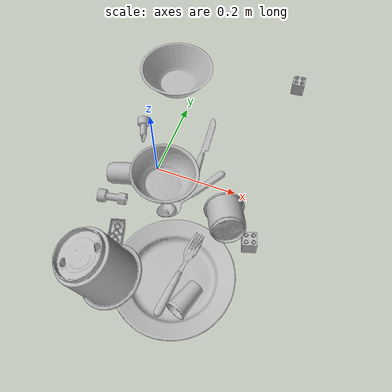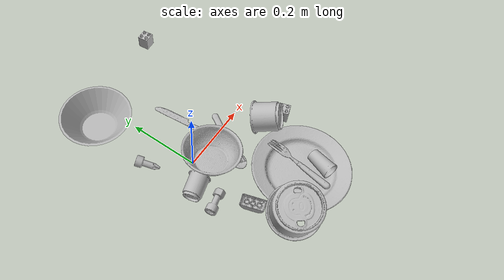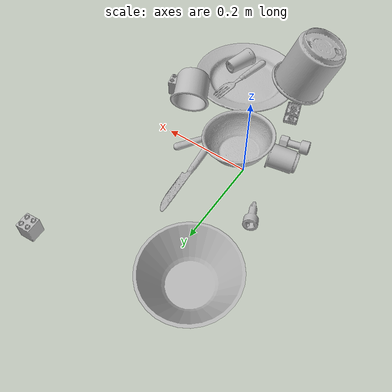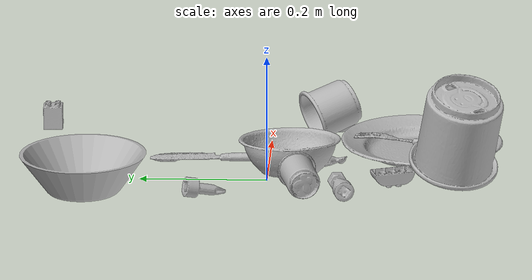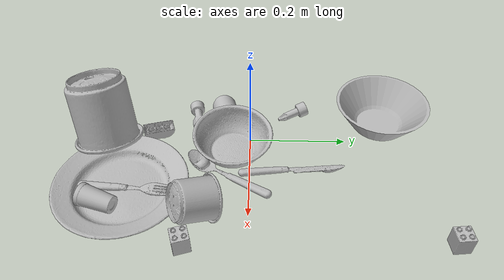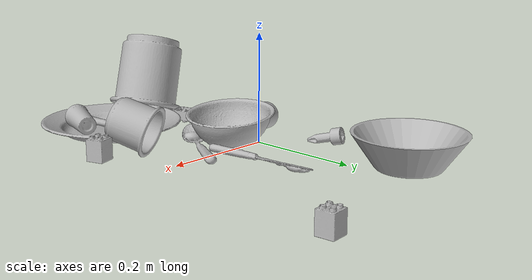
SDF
<sdf version="1.4">
  <world name="default">
    <light name="light1" type="point">
      <pose>0 0 1 0 0 0</pose>
      <diffuse>3 3 3 1</diffuse>
      <specular>3 3 3 1</specular>
    </light>
    <light name="light2" type="point">
      <pose>0 0.5 2 0 0 0</pose>
      <diffuse>1 1 1 1</diffuse>
      <specular>1 1 1 1</specular>
    </light>
    <light name="light3" type="point">
      <pose>0 0.5 2 0 0 0</pose>
      <diffuse>3 3 3 1</diffuse>
      <specular>3 3 3 1</specular>
    </light>
    <scene>
      <ambient>0.7 0.7 0.7</ambient>
    </scene>
    <model name="plate1">
      <link name="link_plate1">
        <collision name="default">
          <geometry>
            <mesh>
              <uri>model://plate/collision_meshes/collision.obj</uri>
              <scale>1.0 1.0 1.0</scale>
            </mesh>
          </geometry>
          <surface>
            <friction>
              <ode>
                <mu>0.5</mu>
                <mu2>0.5</mu2>
              </ode>
            </friction>
          <contact>
        <ode>
            <max_vel>0</max_vel>
            <min_depth>0.0001</min_depth>
            <kp>1e8</kp>
        </ode>
    </contact></surface>
        </collision>
        <visual name="default">
          <geometry>
            <mesh>
              <uri>model://plate/visual_meshes/visual.dae</uri>
              <scale>1.0 1.0 1.0</scale>
            </mesh>
          </geometry>
        </visual>
        <inertial>
          <mass>0.188415065407753</mass>
          <pose>-0.0006044681649655104 0.0002782578521873802 -0.0010561991948634386 0.0022187970116661695 -0.0032254679619122127 0.4526056514331616</pose>
          <inertia>
            <ixx>0.00088140933</ixx>
            <iyy>0.000872979</iyy>
            <izz>0.0017239053</izz>
            <ixy>0</ixy>
            <ixz>0</ixz>
            <iyz>0</iyz>
          </inertia>
        </inertial>
      </link>
      <pose>0.14409853518009186 -0.24567461013793945 0.013745182193815708 -4.200779445869846e-05 -0.00015889276752722474 0.6539694024912588</pose>
    </model>
    <model name="cup1">
      <link name="link_cup1">
        <collision name="default">
          <geometry>
            <mesh>
              <uri>model://d_cups/collision_meshes/collision.obj</uri>
              <scale>2.0 2.0 2.0</scale>
            </mesh>
          </geometry>
          <surface>
            <friction>
              <ode>
                <mu>0.5</mu>
                <mu2>0.5</mu2>
              </ode>
            </friction>
          <contact>
        <ode>
            <max_vel>0</max_vel>
            <min_depth>0.0001</min_depth>
            <kp>1e8</kp>
        </ode>
    </contact></surface>
        </collision>
        <visual name="default">
          <geometry>
            <mesh>
              <uri>model://d_cups/visual_meshes/visual.dae</uri>
              <scale>2.0 2.0 2.0</scale>
            </mesh>
          </geometry>
        </visual>
        <inertial>
          <mass>0.39843064546585083</mass>
          <pose>0.0016136104241013527 0.0038234808016568422 -0.004533304367214441 0.24012134810188138 -0.24709791903716813 0.5942561701250738</pose>
          <inertia>
            <ixx>0.0013343208</ixx>
            <iyy>0.001330459</iyy>
            <izz>0.001207787</izz>
            <ixy>0</ixy>
            <ixz>0</ixz>
            <iyz>0</iyz>
          </inertia>
        </inertial>
      </link>
      <pose>0.004272368736565113 -0.300254762172699 0.08731132745742798 2.88679018996742 -0.2165107816867638 1.2676257205311232</pose>
    </model>
    <model name="silverware1">
      <link name="link_silverware1">
        <collision name="default">
          <geometry>
            <mesh>
              <uri>model://knife/collision_meshes/collision.obj</uri>
              <scale>1.0 1.0 1.0</scale>
            </mesh>
          </geometry>
          <surface>
            <friction>
              <ode>
                <mu>0.5</mu>
                <mu2>0.5</mu2>
              </ode>
            </friction>
          <contact>
        <ode>
            <max_vel>0</max_vel>
            <min_depth>0.0001</min_depth>
            <kp>1e8</kp>
        </ode>
    </contact></surface>
        </collision>
        <visual name="default">
          <geometry>
            <mesh>
              <uri>model://knife/visual_meshes/visual.dae</uri>
              <scale>1.0 1.0 1.0</scale>
            </mesh>
          </geometry>
        </visual>
        <inertial>
          <mass>0.027211036533117294</mass>
          <pose>-0.02378525771200657 0.0015275125624611974 5.062023410573602e-05 0.0730549860308878 0.01724841828598218 -0.007409817457274567</pose>
          <inertia>
            <ixx>7.723595e-07</ixx>
            <iyy>0.000104540384</iyy>
            <izz>0.00010478913</izz>
            <ixy>0</ixy>
            <ixz>0</ixz>
            <iyz>0</iyz>
          </inertia>
        </inertial>
      </link>
      <pose>0.09163136780261993 0.0847378671169281 0.008136847987771034 -0.28174404357035215 -0.008871587436261449 1.6642094696290861</pose>
    </model>
    <model name="silverware2">
      <link name="link_silverware2">
        <collision name="default">
          <geometry>
            <mesh>
              <uri>model://fork/collision_meshes/collision.obj</uri>
              <scale>1.0 1.0 1.0</scale>
            </mesh>
          </geometry>
          <surface>
            <friction>
              <ode>
                <mu>0.5</mu>
                <mu2>0.5</mu2>
              </ode>
            </friction>
          <contact>
        <ode>
            <max_vel>0</max_vel>
            <min_depth>0.0001</min_depth>
            <kp>1e8</kp>
        </ode>
    </contact></surface>
        </collision>
        <visual name="default">
          <geometry>
            <mesh>
              <uri>model://fork/visual_meshes/visual.dae</uri>
              <scale>1.0 1.0 1.0</scale>
            </mesh>
          </geometry>
        </visual>
        <inertial>
          <mass>0.01567319966852665</mass>
          <pose>-0.029570044949650764 0.00046588233090005815 0.0003218860656488687 -0.013551693849150472 -0.010977837004960822 0.014453899894816049</pose>
          <inertia>
            <ixx>5.494343e-07</ixx>
            <iyy>4.0918225e-05</iyy>
            <izz>4.1163967e-05</izz>
            <ixy>0</ixy>
            <ixz>0</ixz>
            <iyz>0</iyz>
          </inertia>
        </inertial>
      </link>
      <pose>0.15232540667057037 -0.2339741587638855 0.018977077677845955 -3.069717029930299 -0.10028276246042192 1.4513760591643512</pose>
    </model>
    <model name="silverware3">
      <link name="link_silverware3">
        <collision name="default">
          <geometry>
            <mesh>
              <uri>model://spoon/collision_meshes/collision.obj</uri>
              <scale>1.0 1.0 1.0</scale>
            </mesh>
          </geometry>
          <surface>
            <friction>
              <ode>
                <mu>0.5</mu>
                <mu2>0.5</mu2>
              </ode>
            </friction>
          <contact>
        <ode>
            <max_vel>0</max_vel>
            <min_depth>0.0001</min_depth>
            <kp>1e8</kp>
        </ode>
    </contact></surface>
        </collision>
        <visual name="default">
          <geometry>
            <mesh>
              <uri>model://spoon/visual_meshes/visual.dae</uri>
              <scale>1.0 1.0 1.0</scale>
            </mesh>
          </geometry>
        </visual>
        <inertial>
          <mass>0.020675545558333397</mass>
          <pose>-0.0055263228714466095 -0.001603417913429439 -0.0007271659560501575 0.03521671071703309 -0.03906584129558259 0.006150610048623938</pose>
          <inertia>
            <ixx>1.1500075e-06</ixx>
            <iyy>7.866978e-05</iyy>
            <izz>7.923691e-05</izz>
            <ixy>0</ixy>
            <ixz>0</ixz>
            <iyz>0</iyz>
          </inertia>
        </inertial>
      </link>
      <pose>0.10841955989599228 -0.04236829653382301 0.00838526152074337 0.006729324620432481 0.026892995503497812 -2.1275018597869555</pose>
    </model>
    <model name="cup3">
      <link name="link_cup3">
        <collision name="default">
          <geometry>
            <mesh>
              <uri>model://h_cups/collision_meshes/collision.obj</uri>
              <scale>1.0 1.0 1.0</scale>
            </mesh>
          </geometry>
          <surface>
            <friction>
              <ode>
                <mu>0.5</mu>
                <mu2>0.5</mu2>
              </ode>
            </friction>
          <contact>
        <ode>
            <max_vel>0</max_vel>
            <min_depth>0.0001</min_depth>
            <kp>1e8</kp>
        </ode>
    </contact></surface>
        </collision>
        <visual name="default">
          <geometry>
            <mesh>
              <uri>model://h_cups/visual_meshes/visual.dae</uri>
              <scale>1.0 1.0 1.0</scale>
            </mesh>
          </geometry>
        </visual>
        <inertial>
          <mass>0.08491484075784683</mass>
          <pose>-2.702520214370452e-05 0.00023018663341645151 -0.0018405397422611713 -0.02436220805872295 0.06545280106490914 0.1288526015338695</pose>
          <inertia>
            <ixx>0.000109663546</ixx>
            <iyy>0.00010835491</iyy>
            <izz>0.00011500697</izz>
            <ixy>0</ixy>
            <ixz>0</ixz>
            <iyz>0</iyz>
          </inertia>
        </inertial>
      </link>
      <pose>0.20903190970420837 -0.09724517911672592 0.05456787347793579 -1.9505836386769466 -0.6241232594233629 0.681167390535269</pose>
    </model>
    <model name="cup4">
      <link name="link_cup4">
        <collision name="default">
          <geometry>
            <mesh>
              <uri>model://cup_small/collision_meshes/collision.obj</uri>
              <scale>1.0 1.0 1.0</scale>
            </mesh>
          </geometry>
          <surface>
            <friction>
              <ode>
                <mu>0.5</mu>
                <mu2>0.5</mu2>
              </ode>
            </friction>
          <contact>
        <ode>
            <max_vel>0</max_vel>
            <min_depth>0.0001</min_depth>
            <kp>1e8</kp>
        </ode>
    </contact></surface>
        </collision>
        <visual name="default">
          <geometry>
            <mesh>
              <uri>model://cup_small/visual_meshes/visual.dae</uri>
              <scale>1.0 1.0 1.0</scale>
            </mesh>
          </geometry>
        </visual>
        <inertial>
          <mass>0.024220753461122513</mass>
          <pose>0.00010482438665349036 -0.00033778438228182495 -0.010742821730673313 -0.011493274197159384 -0.01528013747447056 -0.5058088438882253</pose>
          <inertia>
            <ixx>1.4260815e-05</ixx>
            <iyy>1.433438e-05</iyy>
            <izz>6.4388e-06</izz>
            <ixy>0</ixy>
            <ixz>0</ixz>
            <iyz>0</iyz>
          </inertia>
        </inertial>
      </link>
      <pose>0.1862264722585678 -0.28112608194351196 0.023792166262865067 1.4924912373778372 -0.7972331886080549 -0.2719448573858347</pose>
    </model>
    <model name="cup5">
      <link name="link_cup5">
        <collision name="default">
          <geometry>
            <mesh>
              <uri>model://b_cups/collision_meshes/collision.obj</uri>
              <scale>1.0 1.0 1.0</scale>
            </mesh>
          </geometry>
          <surface>
            <friction>
              <ode>
                <mu>0.5</mu>
                <mu2>0.5</mu2>
              </ode>
            </friction>
          <contact>
        <ode>
            <max_vel>0</max_vel>
            <min_depth>0.0001</min_depth>
            <kp>1e8</kp>
        </ode>
    </contact></surface>
        </collision>
        <visual name="default">
          <geometry>
            <mesh>
              <uri>model://b_cups/visual_meshes/visual.dae</uri>
              <scale>1.0 1.0 1.0</scale>
            </mesh>
          </geometry>
        </visual>
        <inertial>
          <mass>0.049698356539011</mass>
          <pose>0.0005182003951631486 0.0018058595014736056 -0.0013381819007918239 0.1135633586286738 0.03872473724046268 -0.3456911343663658</pose>
          <inertia>
            <ixx>3.2531058e-05</ixx>
            <iyy>3.1913434e-05</iyy>
            <izz>2.7374275e-05</izz>
            <ixy>0</ixy>
            <ixz>0</ixz>
            <iyz>0</iyz>
          </inertia>
        </inertial>
      </link>
      <pose>-0.0633213073015213 -0.05522887036204338 0.027486339211463928 -1.250316176653723 1.2775454383592915 -1.011744093916394</pose>
    </model>
    <model name="bowl1">
      <link name="link_bowl1">
        <collision name="default">
          <geometry>
            <mesh>
              <uri>model://bowl/collision_meshes/collision.obj</uri>
              <scale>1.0 1.0 1.0</scale>
            </mesh>
          </geometry>
          <surface>
            <friction>
              <ode>
                <mu>0.5</mu>
                <mu2>0.5</mu2>
              </ode>
            </friction>
          <contact>
        <ode>
            <max_vel>0</max_vel>
            <min_depth>0.0001</min_depth>
            <kp>1e8</kp>
        </ode>
    </contact></surface>
        </collision>
        <visual name="default">
          <geometry>
            <mesh>
              <uri>model://bowl/visual_meshes/visual.dae</uri>
              <scale>1.0 1.0 1.0</scale>
            </mesh>
          </geometry>
        </visual>
        <inertial>
          <mass>0.10713337361812592</mass>
          <pose>0.00020444899564608932 -0.001030207029543817 -0.0008042642148211598 -0.015763984617069283 0.014546905390658569 0.7140476331316008</pose>
          <inertia>
            <ixx>0.0002460938</ixx>
            <iyy>0.00024059511</iyy>
            <izz>0.00041401442</izz>
            <ixy>0</ixy>
            <ixz>0</ixz>
            <iyz>0</iyz>
          </inertia>
        </inertial>
      </link>
      <pose>0.03624645248055458 -0.03520302101969719 0.03135688230395317 -0.004829345208266369 -0.09234747478943084 -2.8200468164165184</pose>
    </model>
    <model name="bowl2">
      <link name="link_bowl2">
        <collision name="default">
          <geometry>
            <mesh>
              <uri>model://bowl_a/collision_meshes/collision.obj</uri>
              <scale>1.0 1.0 1.0</scale>
            </mesh>
          </geometry>
          <surface>
            <friction>
              <ode>
                <mu>0.5</mu>
                <mu2>0.5</mu2>
              </ode>
            </friction>
          <contact>
        <ode>
            <max_vel>0</max_vel>
            <min_depth>0.0001</min_depth>
            <kp>1e8</kp>
        </ode>
    </contact></surface>
        </collision>
        <visual name="default">
          <geometry>
            <mesh>
              <uri>model://bowl_a/visual_meshes/visual.dae</uri>
              <scale>1.0 1.0 1.0</scale>
            </mesh>
          </geometry>
        </visual>
        <inertial>
          <mass>0.5226007103919983</mass>
          <pose>0.00027867400785908103 4.731409717351198e-05 -0.0013765293406322598 -0.0009805372975616423 -0.0010938241101444716 -0.19123543414166835</pose>
          <inertia>
            <ixx>0.0014878683</ixx>
            <iyy>0.0014970028</iyy>
            <izz>0.0026462309</izz>
            <ixy>0</ixy>
            <ixz>0</ixz>
            <iyz>0</iyz>
          </inertia>
        </inertial>
      </link>
      <pose>-0.05941404402256012 0.28134751319885254 0.030382992699742317 -1.957764001915852e-08 1.2211439350596145e-07 3.05905380481972</pose>
    </model>
    <model name="toy1">
      <link name="link_toy1">
        <collision name="default">
          <geometry>
            <mesh>
              <uri>model://f_lego_duplo/collision_meshes/collision.obj</uri>
              <scale>1.0 1.0 1.0</scale>
            </mesh>
          </geometry>
          <surface>
            <friction>
              <ode>
                <mu>0.5</mu>
                <mu2>0.5</mu2>
              </ode>
            </friction>
          <contact>
        <ode>
            <max_vel>0</max_vel>
            <min_depth>0.0001</min_depth>
            <kp>1e8</kp>
        </ode>
    </contact></surface>
        </collision>
        <visual name="default">
          <geometry>
            <mesh>
              <uri>model://f_lego_duplo/visual_meshes/visual.dae</uri>
              <scale>1.0 1.0 1.0</scale>
            </mesh>
          </geometry>
        </visual>
        <inertial>
          <mass>0.04674473777413368</mass>
          <pose>2.3694283299846575e-05 0.00013393160770647228 0.0018837876850739121 0.029838743240884653 -0.014424615896258132 -0.6756775311218791</pose>
          <inertia>
            <ixx>9.877422e-06</ixx>
            <iyy>9.965418e-06</iyy>
            <izz>8.57402e-06</izz>
            <ixy>0</ixy>
            <ixz>0</ixz>
            <iyz>0</iyz>
          </inertia>
        </inertial>
      </link>
      <pose>0.26979607343673706 -0.11616435647010803 0.02187098190188408 3.21513935102881e-05 2.6858092083802158e-05 1.8754532287695589</pose>
    </model>
    <model name="toy2">
      <link name="link_toy2">
        <collision name="default">
          <geometry>
            <mesh>
              <uri>model://b_lego_duplo/collision_meshes/collision.obj</uri>
              <scale>1.0 1.0 1.0</scale>
            </mesh>
          </geometry>
          <surface>
            <friction>
              <ode>
                <mu>0.5</mu>
                <mu2>0.5</mu2>
              </ode>
            </friction>
          <contact>
        <ode>
            <max_vel>0</max_vel>
            <min_depth>0.0001</min_depth>
            <kp>1e8</kp>
        </ode>
    </contact></surface>
        </collision>
        <visual name="default">
          <geometry>
            <mesh>
              <uri>model://b_lego_duplo/visual_meshes/visual.dae</uri>
              <scale>1.0 1.0 1.0</scale>
            </mesh>
          </geometry>
        </visual>
        <inertial>
          <mass>0.046308279037475586</mass>
          <pose>-0.00011053026537410915 -9.152292477665469e-06 0.001929429010488093 -0.03749474318211287 -0.02635425030857695 0.451892682452606</pose>
          <inertia>
            <ixx>9.477338e-06</ixx>
            <iyy>9.541048e-06</iyy>
            <izz>8.443999e-06</izz>
            <ixy>0</ixy>
            <ixz>0</ixz>
            <iyz>0</iyz>
          </inertia>
        </inertial>
      </link>
      <pose>0.2589103579521179 0.37138059735298157 0.02181500941514969 1.943796712489809e-07 5.595043589960609e-07 1.6654867883111337</pose>
    </model>
    <model name="toy3">
      <link name="link_toy3">
        <collision name="default">
          <geometry>
            <mesh>
              <uri>model://c_toy_airplane/collision_meshes/collision.obj</uri>
              <scale>1.0 1.0 1.0</scale>
            </mesh>
          </geometry>
          <surface>
            <friction>
              <ode>
                <mu>0.5</mu>
                <mu2>0.5</mu2>
              </ode>
            </friction>
          <contact>
        <ode>
            <max_vel>0</max_vel>
            <min_depth>0.0001</min_depth>
            <kp>1e8</kp>
        </ode>
    </contact></surface>
        </collision>
        <visual name="default">
          <geometry>
            <mesh>
              <uri>model://c_toy_airplane/visual_meshes/visual.dae</uri>
              <scale>1.0 1.0 1.0</scale>
            </mesh>
          </geometry>
        </visual>
        <inertial>
          <mass>0.03609102964401245</mass>
          <pose>-0.00023024271649774164 -4.429565194641327e-07 -0.006080531980842352 -0.006192551548155338 -0.01679780015794874 0.7654806130326979</pose>
          <inertia>
            <ixx>1.6572261e-05</ixx>
            <iyy>1.6525488e-05</iyy>
            <izz>3.890839e-06</izz>
            <ixy>0</ixy>
            <ixz>0</ixz>
            <iyz>0</iyz>
          </inertia>
        </inertial>
      </link>
      <pose>-0.06200558692216873 -0.11644645035266876 0.01421586237847805 -1.7881212734543248 1.3247927070185517 -1.5875509108482033</pose>
    </model>
    <model name="toy4">
      <link name="link_toy4">
        <collision name="default">
          <geometry>
            <mesh>
              <uri>model://d_toy_airplane/collision_meshes/collision.obj</uri>
              <scale>1.0 1.0 1.0</scale>
            </mesh>
          </geometry>
          <surface>
            <friction>
              <ode>
                <mu>0.5</mu>
                <mu2>0.5</mu2>
              </ode>
            </friction>
          <contact>
        <ode>
            <max_vel>0</max_vel>
            <min_depth>0.0001</min_depth>
            <kp>1e8</kp>
        </ode>
    </contact></surface>
        </collision>
        <visual name="default">
          <geometry>
            <mesh>
              <uri>model://d_toy_airplane/visual_meshes/visual.dae</uri>
              <scale>1.0 1.0 1.0</scale>
            </mesh>
          </geometry>
        </visual>
        <inertial>
          <mass>0.017463792115449905</mass>
          <pose>9.410289203515276e-05 -5.80932101001963e-05 -0.011728095822036266 0.00026611357398368453 0.004679028940218743 0.5192826772494831</pose>
          <inertia>
            <ixx>5.2353053e-06</ixx>
            <iyy>5.239254e-06</iyy>
            <izz>1.5805728e-06</izz>
            <ixy>0</ixy>
            <ixz>0</ixz>
            <iyz>0</iyz>
          </inertia>
        </inertial>
      </link>
      <pose>-0.07663045823574066 0.09131710231304169 0.011039212346076965 2.424830407969305 -1.2602087146523613 -0.4544467812920045</pose>
    </model>
    <model name="toy5">
      <link name="link_toy5">
        <collision name="default">
          <geometry>
            <mesh>
              <uri>model://a_lego_duplo/collision_meshes/collision.obj</uri>
              <scale>1.0 1.0 1.0</scale>
            </mesh>
          </geometry>
          <surface>
            <friction>
              <ode>
                <mu>0.5</mu>
                <mu2>0.5</mu2>
              </ode>
            </friction>
          <contact>
        <ode>
            <max_vel>0</max_vel>
            <min_depth>0.0001</min_depth>
            <kp>1e8</kp>
        </ode>
    </contact></surface>
        </collision>
        <visual name="default">
          <geometry>
            <mesh>
              <uri>model://a_lego_duplo/visual_meshes/visual.dae</uri>
              <scale>1.0 1.0 1.0</scale>
            </mesh>
          </geometry>
        </visual>
        <inertial>
          <mass>0.016317613422870636</mass>
          <pose>-0.00011337783507769927 0.00018517576972953975 0.00036926058237440884 -0.01411698761390393 -0.0001256633936569927 6.142942133676727e-05</pose>
          <inertia>
            <ixx>2.0920475e-06</ixx>
            <iyy>4.6866458e-06</iyy>
            <izz>5.8054516e-06</izz>
            <ixy>0</ixy>
            <ixz>0</ixz>
            <iyz>0</iyz>
          </inertia>
        </inertial>
      </link>
      <pose>-0.012578871101140976 -0.19662068784236908 0.012124808505177498 -3.1412853033501156 -0.015581297795383198 -1.283286277962201</pose>
    </model>
  <physics type="ode">
      <max_contacts>50</max_contacts>
      <ode>
        <solver>
          <type>quick</type>
          <iters>75</iters>
        </solver>
        <constraints>
          <contact_max_correcting_vel>0</contact_max_correcting_vel>
          <contact_surface_layer>0</contact_surface_layer>
        </constraints>
      </ode>
    </physics></world>
</sdf>
